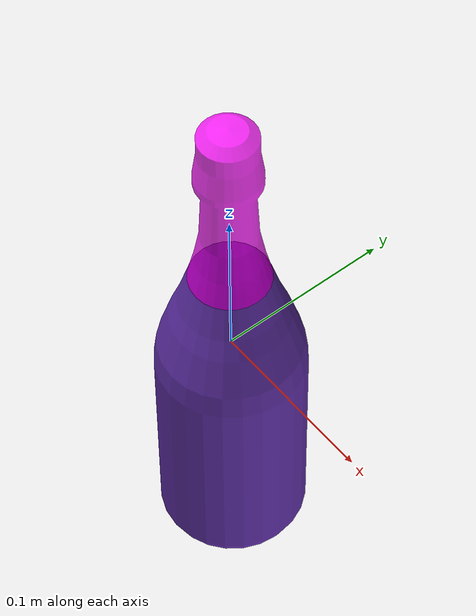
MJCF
<?xml version="1.0" encoding="utf-8"?>
<mujoco model="top_watertight_tiny">

  <asset>

    <mesh file="top_watertight_tiny.obj"/>

    <mesh file="top_watertight_tiny_collision_0.obj"/>

    <mesh file="top_watertight_tiny_collision_1.obj"/>

    <mesh file="top_watertight_tiny_collision_2.obj"/>

    <mesh file="top_watertight_tiny_collision_3.obj"/>

    <mesh file="top_watertight_tiny_collision_4.obj"/>

    <mesh file="top_watertight_tiny_collision_5.obj"/>

    <mesh file="top_watertight_tiny_collision_6.obj"/>

    <mesh file="top_watertight_tiny_collision_7.obj"/>

    <mesh file="top_watertight_tiny_collision_8.obj"/>

    <mesh file="top_watertight_tiny_collision_9.obj"/>

    <mesh file="top_watertight_tiny_collision_10.obj"/>

    <mesh file="top_watertight_tiny_collision_11.obj"/>

    <mesh file="top_watertight_tiny_collision_12.obj"/>

    <mesh file="top_watertight_tiny_collision_13.obj"/>

    <mesh file="top_watertight_tiny_collision_14.obj"/>

    <mesh file="top_watertight_tiny_collision_15.obj"/>

    <mesh file="top_watertight_tiny_collision_16.obj"/>

    <mesh file="top_watertight_tiny_collision_17.obj"/>

    <mesh file="top_watertight_tiny_collision_18.obj"/>

    <mesh file="top_watertight_tiny_collision_19.obj"/>

    <mesh file="top_watertight_tiny_collision_20.obj"/>

    <mesh file="top_watertight_tiny_collision_21.obj"/>

    <mesh file="top_watertight_tiny_collision_22.obj"/>

    <mesh file="top_watertight_tiny_collision_23.obj"/>

    <mesh file="top_watertight_tiny_collision_24.obj"/>

    <mesh file="top_watertight_tiny_collision_25.obj"/>

    <mesh file="top_watertight_tiny_collision_26.obj"/>

    <mesh file="top_watertight_tiny_collision_27.obj"/>

    <mesh file="top_watertight_tiny_collision_28.obj"/>

    <mesh file="top_watertight_tiny_collision_29.obj"/>

    <mesh file="top_watertight_tiny_collision_30.obj"/>

    <mesh file="top_watertight_tiny_collision_31.obj"/>

    <mesh file="top_watertight_tiny_collision_32.obj"/>

    <mesh file="top_watertight_tiny_collision_33.obj"/>

    <mesh file="top_watertight_tiny_collision_34.obj"/>

    <mesh file="bottom_watertight_tiny.obj"/>

    <mesh file="bottom_watertight_tiny_collision_0.obj"/>

    <mesh file="bottom_watertight_tiny_collision_1.obj"/>

    <mesh file="bottom_watertight_tiny_collision_2.obj"/>

    <mesh file="bottom_watertight_tiny_collision_3.obj"/>

    <mesh file="bottom_watertight_tiny_collision_4.obj"/>

    <mesh file="bottom_watertight_tiny_collision_5.obj"/>

    <mesh file="bottom_watertight_tiny_collision_6.obj"/>

    <mesh file="bottom_watertight_tiny_collision_7.obj"/>

    <mesh file="bottom_watertight_tiny_collision_8.obj"/>

    <mesh file="bottom_watertight_tiny_collision_9.obj"/>

    <mesh file="bottom_watertight_tiny_collision_10.obj"/>

    <mesh file="bottom_watertight_tiny_collision_11.obj"/>

    <mesh file="bottom_watertight_tiny_collision_12.obj"/>

    <mesh file="bottom_watertight_tiny_collision_13.obj"/>

    <mesh file="bottom_watertight_tiny_collision_14.obj"/>

    <mesh file="bottom_watertight_tiny_collision_15.obj"/>

    <mesh file="bottom_watertight_tiny_collision_16.obj"/>

    <mesh file="bottom_watertight_tiny_collision_17.obj"/>

    <mesh file="bottom_watertight_tiny_collision_18.obj"/>

    <mesh file="bottom_watertight_tiny_collision_19.obj"/>

    <mesh file="bottom_watertight_tiny_collision_20.obj"/>

    <mesh file="bottom_watertight_tiny_collision_21.obj"/>

    <mesh file="bottom_watertight_tiny_collision_22.obj"/>

    <mesh file="bottom_watertight_tiny_collision_23.obj"/>

    <mesh file="bottom_watertight_tiny_collision_24.obj"/>

    <mesh file="bottom_watertight_tiny_collision_25.obj"/>

    <mesh file="bottom_watertight_tiny_collision_26.obj"/>

    <mesh file="bottom_watertight_tiny_collision_27.obj"/>

    <mesh file="bottom_watertight_tiny_collision_28.obj"/>

    <mesh file="bottom_watertight_tiny_collision_29.obj"/>

    <mesh file="bottom_watertight_tiny_collision_30.obj"/>

    <mesh file="bottom_watertight_tiny_collision_31.obj"/>

    <mesh file="bottom_watertight_tiny_collision_32.obj"/>

    <mesh file="bottom_watertight_tiny_collision_33.obj"/>

    <mesh file="bottom_watertight_tiny_collision_34.obj"/>

    <mesh file="bottom_watertight_tiny_collision_35.obj"/>

    <mesh file="bottom_watertight_tiny_collision_36.obj"/>

    <mesh file="bottom_watertight_tiny_collision_37.obj"/>

    <mesh file="bottom_watertight_tiny_collision_38.obj"/>

    <mesh file="bottom_watertight_tiny_collision_39.obj"/>

    <mesh file="bottom_watertight_tiny_collision_40.obj"/>

    <mesh file="bottom_watertight_tiny_collision_41.obj"/>

    <mesh file="bottom_watertight_tiny_collision_42.obj"/>

    <mesh file="bottom_watertight_tiny_collision_43.obj"/>

    <mesh file="bottom_watertight_tiny_collision_44.obj"/>

    <mesh file="bottom_watertight_tiny_collision_45.obj"/>

  </asset>

  <worldbody>

    <body name="top_watertight_tiny">

      <freejoint/>

      <geom mesh="top_watertight_tiny" group="2" type="mesh" rgba="0.4 0.2 0.7 1" contype="0" conaffinity="0" solimp="0.90 0.95 0.001" solref="0.02 1.0" density="100" friction="0.95 0.4 0.3"/>

      <geom mesh="top_watertight_tiny_collision_0" rgba="0.9738559264525701 0.5337209492172882 0.19861902941835907 1" group="3" type="mesh" solimp="0.90 0.95 0.001" solref="0.02 1.0" density="100" friction="0.95 0.4 0.3"/>

      <geom mesh="top_watertight_tiny_collision_1" rgba="0.39413652552306055 0.7271618735801437 0.3476619241012544 1" group="3" type="mesh" solimp="0.90 0.95 0.001" solref="0.02 1.0" density="100" friction="0.95 0.4 0.3"/>

      <geom mesh="top_watertight_tiny_collision_2" rgba="0.07412613423704395 0.6511715876219647 0.686690603524716 1" group="3" type="mesh" solimp="0.90 0.95 0.001" solref="0.02 1.0" density="100" friction="0.95 0.4 0.3"/>

      <geom mesh="top_watertight_tiny_collision_3" rgba="0.09133713154245604 0.7821452830691618 0.6533938736487966 1" group="3" type="mesh" solimp="0.90 0.95 0.001" solref="0.02 1.0" density="100" friction="0.95 0.4 0.3"/>

      <geom mesh="top_watertight_tiny_collision_4" rgba="0.9530333933785317 0.23166128603588454 0.3520543809126233 1" group="3" type="mesh" solimp="0.90 0.95 0.001" solref="0.02 1.0" density="100" friction="0.95 0.4 0.3"/>

      <geom mesh="top_watertight_tiny_collision_5" rgba="0.7411129441383953 0.29504837082061486 0.852786074730955 1" group="3" type="mesh" solimp="0.90 0.95 0.001" solref="0.02 1.0" density="100" friction="0.95 0.4 0.3"/>

      <geom mesh="top_watertight_tiny_collision_6" rgba="0.9830123361096486 0.6379150172404865 0.3505885316255166 1" group="3" type="mesh" solimp="0.90 0.95 0.001" solref="0.02 1.0" density="100" friction="0.95 0.4 0.3"/>

      <geom mesh="top_watertight_tiny_collision_7" rgba="0.6242415163558259 0.5008725793006199 0.12455554878553143 1" group="3" type="mesh" solimp="0.90 0.95 0.001" solref="0.02 1.0" density="100" friction="0.95 0.4 0.3"/>

      <geom mesh="top_watertight_tiny_collision_8" rgba="0.287084232208501 0.8573439642230989 0.08510092083700826 1" group="3" type="mesh" solimp="0.90 0.95 0.001" solref="0.02 1.0" density="100" friction="0.95 0.4 0.3"/>

      <geom mesh="top_watertight_tiny_collision_9" rgba="0.8866160503093553 0.5170332608377072 0.6592623922124261 1" group="3" type="mesh" solimp="0.90 0.95 0.001" solref="0.02 1.0" density="100" friction="0.95 0.4 0.3"/>

      <geom mesh="top_watertight_tiny_collision_10" rgba="0.11415598515014069 0.1761473839022467 0.2984783363679566 1" group="3" type="mesh" solimp="0.90 0.95 0.001" solref="0.02 1.0" density="100" friction="0.95 0.4 0.3"/>

      <geom mesh="top_watertight_tiny_collision_11" rgba="0.4925214268449788 0.942749009490018 0.7131283208554677 1" group="3" type="mesh" solimp="0.90 0.95 0.001" solref="0.02 1.0" density="100" friction="0.95 0.4 0.3"/>

      <geom mesh="top_watertight_tiny_collision_12" rgba="0.6215571992394701 0.288457661769861 0.7245392370082887 1" group="3" type="mesh" solimp="0.90 0.95 0.001" solref="0.02 1.0" density="100" friction="0.95 0.4 0.3"/>

      <geom mesh="top_watertight_tiny_collision_13" rgba="0.4896756077365232 0.14476789058865935 0.15206031065150805 1" group="3" type="mesh" solimp="0.90 0.95 0.001" solref="0.02 1.0" density="100" friction="0.95 0.4 0.3"/>

      <geom mesh="top_watertight_tiny_collision_14" rgba="0.29437039010668964 0.23827960761558098 0.1799180256123002 1" group="3" type="mesh" solimp="0.90 0.95 0.001" solref="0.02 1.0" density="100" friction="0.95 0.4 0.3"/>

      <geom mesh="top_watertight_tiny_collision_15" rgba="0.9489261023803855 0.007698044262403947 0.18685135030394895 1" group="3" type="mesh" solimp="0.90 0.95 0.001" solref="0.02 1.0" density="100" friction="0.95 0.4 0.3"/>

      <geom mesh="top_watertight_tiny_collision_16" rgba="0.11067168528007187 0.49295493900146825 0.4043171822307431 1" group="3" type="mesh" solimp="0.90 0.95 0.001" solref="0.02 1.0" density="100" friction="0.95 0.4 0.3"/>

      <geom mesh="top_watertight_tiny_collision_17" rgba="0.28389489076703356 0.20043419366291504 0.10643453370870615 1" group="3" type="mesh" solimp="0.90 0.95 0.001" solref="0.02 1.0" density="100" friction="0.95 0.4 0.3"/>

      <geom mesh="top_watertight_tiny_collision_18" rgba="0.8428593090388339 0.966587334305474 0.7027854532816847 1" group="3" type="mesh" solimp="0.90 0.95 0.001" solref="0.02 1.0" density="100" friction="0.95 0.4 0.3"/>

      <geom mesh="top_watertight_tiny_collision_19" rgba="0.509991584954913 0.974778184802531 0.9173120337305716 1" group="3" type="mesh" solimp="0.90 0.95 0.001" solref="0.02 1.0" density="100" friction="0.95 0.4 0.3"/>

      <geom mesh="top_watertight_tiny_collision_20" rgba="0.9516381584837211 0.6916173539910881 0.16605530309972982 1" group="3" type="mesh" solimp="0.90 0.95 0.001" solref="0.02 1.0" density="100" friction="0.95 0.4 0.3"/>

      <geom mesh="top_watertight_tiny_collision_21" rgba="0.9773382030140296 0.5392423396827188 0.7945766254847566 1" group="3" type="mesh" solimp="0.90 0.95 0.001" solref="0.02 1.0" density="100" friction="0.95 0.4 0.3"/>

      <geom mesh="top_watertight_tiny_collision_22" rgba="0.7199999787723581 0.16934581097258983 0.869384506450687 1" group="3" type="mesh" solimp="0.90 0.95 0.001" solref="0.02 1.0" density="100" friction="0.95 0.4 0.3"/>

      <geom mesh="top_watertight_tiny_collision_23" rgba="0.5269935254383796 0.2629110453428025 0.90931322184288 1" group="3" type="mesh" solimp="0.90 0.95 0.001" solref="0.02 1.0" density="100" friction="0.95 0.4 0.3"/>

      <geom mesh="top_watertight_tiny_collision_24" rgba="0.5197499049102631 0.9702703242816139 0.24974131176267833 1" group="3" type="mesh" solimp="0.90 0.95 0.001" solref="0.02 1.0" density="100" friction="0.95 0.4 0.3"/>

      <geom mesh="top_watertight_tiny_collision_25" rgba="0.12915463850100517 0.3305229496009755 0.008566485712579563 1" group="3" type="mesh" solimp="0.90 0.95 0.001" solref="0.02 1.0" density="100" friction="0.95 0.4 0.3"/>

      <geom mesh="top_watertight_tiny_collision_26" rgba="0.18484860801873404 0.13327779096791248 0.2214603218118909 1" group="3" type="mesh" solimp="0.90 0.95 0.001" solref="0.02 1.0" density="100" friction="0.95 0.4 0.3"/>

      <geom mesh="top_watertight_tiny_collision_27" rgba="0.4751100295940224 0.07497054983724105 0.5325028518598828 1" group="3" type="mesh" solimp="0.90 0.95 0.001" solref="0.02 1.0" density="100" friction="0.95 0.4 0.3"/>

      <geom mesh="top_watertight_tiny_collision_28" rgba="0.6403231524758303 0.4649586356370077 0.05265068598298506 1" group="3" type="mesh" solimp="0.90 0.95 0.001" solref="0.02 1.0" density="100" friction="0.95 0.4 0.3"/>

      <geom mesh="top_watertight_tiny_collision_29" rgba="0.3572005129331567 0.6535381506605513 0.2136499025759483 1" group="3" type="mesh" solimp="0.90 0.95 0.001" solref="0.02 1.0" density="100" friction="0.95 0.4 0.3"/>

      <geom mesh="top_watertight_tiny_collision_30" rgba="0.8488584965814733 0.9731474160440399 0.4731022551812699 1" group="3" type="mesh" solimp="0.90 0.95 0.001" solref="0.02 1.0" density="100" friction="0.95 0.4 0.3"/>

      <geom mesh="top_watertight_tiny_collision_31" rgba="0.6741138243044994 0.18329433716930066 0.6681444988255048 1" group="3" type="mesh" solimp="0.90 0.95 0.001" solref="0.02 1.0" density="100" friction="0.95 0.4 0.3"/>

      <geom mesh="top_watertight_tiny_collision_32" rgba="0.9291629245122077 0.2489003633017176 0.7294762004136192 1" group="3" type="mesh" solimp="0.90 0.95 0.001" solref="0.02 1.0" density="100" friction="0.95 0.4 0.3"/>

      <geom mesh="top_watertight_tiny_collision_33" rgba="0.504408600488143 0.48494918983962154 0.11692320423307401 1" group="3" type="mesh" solimp="0.90 0.95 0.001" solref="0.02 1.0" density="100" friction="0.95 0.4 0.3"/>

      <geom mesh="top_watertight_tiny_collision_34" rgba="0.3136491652962591 0.6274255026395742 0.4985581952887612 1" group="3" type="mesh" solimp="0.90 0.95 0.001" solref="0.02 1.0" density="100" friction="0.95 0.4 0.3"/>

      <body name="bottom_watertight_tiny">

        <geom mesh="bottom_watertight_tiny" group="2" type="mesh" rgba="1 0 1 0.8" contype="0" conaffinity="0" solimp="0.90 0.95 0.001" solref="0.02 1.0" density="100" friction="0.95 0.4 0.3"/>

        <geom mesh="bottom_watertight_tiny_collision_0" rgba="0.9421016590431367 0.4295423006999385 0.4772473852593627 1" group="3" type="mesh" solimp="0.90 0.95 0.001" solref="0.02 1.0" density="100" friction="0.95 0.4 0.3"/>

        <geom mesh="bottom_watertight_tiny_collision_1" rgba="0.1564351845515236 0.5539180612918909 0.802008377272998 1" group="3" type="mesh" solimp="0.90 0.95 0.001" solref="0.02 1.0" density="100" friction="0.95 0.4 0.3"/>

        <geom mesh="bottom_watertight_tiny_collision_2" rgba="0.9004269855679644 0.6677418246746807 0.19382898476810484 1" group="3" type="mesh" solimp="0.90 0.95 0.001" solref="0.02 1.0" density="100" friction="0.95 0.4 0.3"/>

        <geom mesh="bottom_watertight_tiny_collision_3" rgba="0.5575978403072669 0.5755522339741203 0.7672808572614295 1" group="3" type="mesh" solimp="0.90 0.95 0.001" solref="0.02 1.0" density="100" friction="0.95 0.4 0.3"/>

        <geom mesh="bottom_watertight_tiny_collision_4" rgba="0.050664887594296215 0.37647322269453243 0.08547653072307826 1" group="3" type="mesh" solimp="0.90 0.95 0.001" solref="0.02 1.0" density="100" friction="0.95 0.4 0.3"/>

        <geom mesh="bottom_watertight_tiny_collision_5" rgba="0.4213739520240328 0.32687512567219856 0.009920602645650534 1" group="3" type="mesh" solimp="0.90 0.95 0.001" solref="0.02 1.0" density="100" friction="0.95 0.4 0.3"/>

        <geom mesh="bottom_watertight_tiny_collision_6" rgba="0.2726108470352995 0.34344507423970083 0.08211541466282535 1" group="3" type="mesh" solimp="0.90 0.95 0.001" solref="0.02 1.0" density="100" friction="0.95 0.4 0.3"/>

        <geom mesh="bottom_watertight_tiny_collision_7" rgba="0.209656390244906 0.7569628128122862 0.10707746620259084 1" group="3" type="mesh" solimp="0.90 0.95 0.001" solref="0.02 1.0" density="100" friction="0.95 0.4 0.3"/>

        <geom mesh="bottom_watertight_tiny_collision_8" rgba="0.25317475710928106 0.7707558476400088 0.7540822614944259 1" group="3" type="mesh" solimp="0.90 0.95 0.001" solref="0.02 1.0" density="100" friction="0.95 0.4 0.3"/>

        <geom mesh="bottom_watertight_tiny_collision_9" rgba="0.331245156585243 0.6996805871700583 0.009986498375281982 1" group="3" type="mesh" solimp="0.90 0.95 0.001" solref="0.02 1.0" density="100" friction="0.95 0.4 0.3"/>

        <geom mesh="bottom_watertight_tiny_collision_10" rgba="0.3644299739436261 0.6023554082664958 0.5375104901850447 1" group="3" type="mesh" solimp="0.90 0.95 0.001" solref="0.02 1.0" density="100" friction="0.95 0.4 0.3"/>

        <geom mesh="bottom_watertight_tiny_collision_11" rgba="0.11351254824832557 0.9258838328475842 0.15512815887520648 1" group="3" type="mesh" solimp="0.90 0.95 0.001" solref="0.02 1.0" density="100" friction="0.95 0.4 0.3"/>

        <geom mesh="bottom_watertight_tiny_collision_12" rgba="0.06505928683881912 0.4292743657263626 0.7575145250857411 1" group="3" type="mesh" solimp="0.90 0.95 0.001" solref="0.02 1.0" density="100" friction="0.95 0.4 0.3"/>

        <geom mesh="bottom_watertight_tiny_collision_13" rgba="0.4694387354584154 0.4024197791657137 0.6528968626089501 1" group="3" type="mesh" solimp="0.90 0.95 0.001" solref="0.02 1.0" density="100" friction="0.95 0.4 0.3"/>

        <geom mesh="bottom_watertight_tiny_collision_14" rgba="0.38555748008515844 0.05350648839061001 0.04314232303130683 1" group="3" type="mesh" solimp="0.90 0.95 0.001" solref="0.02 1.0" density="100" friction="0.95 0.4 0.3"/>

        <geom mesh="bottom_watertight_tiny_collision_15" rgba="0.5018653866945066 0.28536465750207907 0.285600573605054 1" group="3" type="mesh" solimp="0.90 0.95 0.001" solref="0.02 1.0" density="100" friction="0.95 0.4 0.3"/>

        <geom mesh="bottom_watertight_tiny_collision_16" rgba="0.2885841742282278 0.11484371185836084 0.6374622385377419 1" group="3" type="mesh" solimp="0.90 0.95 0.001" solref="0.02 1.0" density="100" friction="0.95 0.4 0.3"/>

        <geom mesh="bottom_watertight_tiny_collision_17" rgba="0.2198935390615402 0.46916866972248616 0.5731089723840236 1" group="3" type="mesh" solimp="0.90 0.95 0.001" solref="0.02 1.0" density="100" friction="0.95 0.4 0.3"/>

        <geom mesh="bottom_watertight_tiny_collision_18" rgba="0.2653321208684818 0.24646622954153208 0.7672859701737712 1" group="3" type="mesh" solimp="0.90 0.95 0.001" solref="0.02 1.0" density="100" friction="0.95 0.4 0.3"/>

        <geom mesh="bottom_watertight_tiny_collision_19" rgba="0.897694818378677 0.7118719243561996 0.3061458683326824 1" group="3" type="mesh" solimp="0.90 0.95 0.001" solref="0.02 1.0" density="100" friction="0.95 0.4 0.3"/>

        <geom mesh="bottom_watertight_tiny_collision_20" rgba="0.8702845893420182 0.24583197183578354 0.5850663755475531 1" group="3" type="mesh" solimp="0.90 0.95 0.001" solref="0.02 1.0" density="100" friction="0.95 0.4 0.3"/>

        <geom mesh="bottom_watertight_tiny_collision_21" rgba="0.6159620466272289 0.1589913927677582 0.029974515071139796 1" group="3" type="mesh" solimp="0.90 0.95 0.001" solref="0.02 1.0" density="100" friction="0.95 0.4 0.3"/>

        <geom mesh="bottom_watertight_tiny_collision_22" rgba="0.6418068765041776 0.7568407788148714 0.3302895908270408 1" group="3" type="mesh" solimp="0.90 0.95 0.001" solref="0.02 1.0" density="100" friction="0.95 0.4 0.3"/>

        <geom mesh="bottom_watertight_tiny_collision_23" rgba="0.49876588439541913 0.726456532277409 0.38369284959784156 1" group="3" type="mesh" solimp="0.90 0.95 0.001" solref="0.02 1.0" density="100" friction="0.95 0.4 0.3"/>

        <geom mesh="bottom_watertight_tiny_collision_24" rgba="0.7062365071740999 0.984629234598314 0.3316765135285228 1" group="3" type="mesh" solimp="0.90 0.95 0.001" solref="0.02 1.0" density="100" friction="0.95 0.4 0.3"/>

        <geom mesh="bottom_watertight_tiny_collision_25" rgba="0.7694210651642691 0.6930414808966998 0.09524614367842332 1" group="3" type="mesh" solimp="0.90 0.95 0.001" solref="0.02 1.0" density="100" friction="0.95 0.4 0.3"/>

        <geom mesh="bottom_watertight_tiny_collision_26" rgba="0.2911826037413868 0.12479311797545867 0.34025567054163486 1" group="3" type="mesh" solimp="0.90 0.95 0.001" solref="0.02 1.0" density="100" friction="0.95 0.4 0.3"/>

        <geom mesh="bottom_watertight_tiny_collision_27" rgba="0.07095360940358841 0.4397360277175626 0.7667453877336858 1" group="3" type="mesh" solimp="0.90 0.95 0.001" solref="0.02 1.0" density="100" friction="0.95 0.4 0.3"/>

        <geom mesh="bottom_watertight_tiny_collision_28" rgba="0.23394590654754666 0.3329196305397468 0.1679757856385471 1" group="3" type="mesh" solimp="0.90 0.95 0.001" solref="0.02 1.0" density="100" friction="0.95 0.4 0.3"/>

        <geom mesh="bottom_watertight_tiny_collision_29" rgba="0.693174066530816 0.4990784067714581 0.14263645644712553 1" group="3" type="mesh" solimp="0.90 0.95 0.001" solref="0.02 1.0" density="100" friction="0.95 0.4 0.3"/>

        <geom mesh="bottom_watertight_tiny_collision_30" rgba="0.6622654653008889 0.6911383213170047 0.15885570962589501 1" group="3" type="mesh" solimp="0.90 0.95 0.001" solref="0.02 1.0" density="100" friction="0.95 0.4 0.3"/>

        <geom mesh="bottom_watertight_tiny_collision_31" rgba="0.6495744711322515 0.7399123191426145 0.36334379622761315 1" group="3" type="mesh" solimp="0.90 0.95 0.001" solref="0.02 1.0" density="100" friction="0.95 0.4 0.3"/>

        <geom mesh="bottom_watertight_tiny_collision_32" rgba="0.4857998602029353 0.4669579639154785 0.7336727538320122 1" group="3" type="mesh" solimp="0.90 0.95 0.001" solref="0.02 1.0" density="100" friction="0.95 0.4 0.3"/>

        <geom mesh="bottom_watertight_tiny_collision_33" rgba="0.1626324719127884 0.42275493461657665 0.6003403505982362 1" group="3" type="mesh" solimp="0.90 0.95 0.001" solref="0.02 1.0" density="100" friction="0.95 0.4 0.3"/>

        <geom mesh="bottom_watertight_tiny_collision_34" rgba="0.8028879947536873 0.8191197795249725 0.4483497909421402 1" group="3" type="mesh" solimp="0.90 0.95 0.001" solref="0.02 1.0" density="100" friction="0.95 0.4 0.3"/>

        <geom mesh="bottom_watertight_tiny_collision_35" rgba="0.016180955758664295 0.38387173463286384 0.10277014666387763 1" group="3" type="mesh" solimp="0.90 0.95 0.001" solref="0.02 1.0" density="100" friction="0.95 0.4 0.3"/>

        <geom mesh="bottom_watertight_tiny_collision_36" rgba="0.6430289699674492 0.7361954576017222 0.7611652295697081 1" group="3" type="mesh" solimp="0.90 0.95 0.001" solref="0.02 1.0" density="100" friction="0.95 0.4 0.3"/>

        <geom mesh="bottom_watertight_tiny_collision_37" rgba="0.6180132134260138 0.8863335084322751 0.5975213678052897 1" group="3" type="mesh" solimp="0.90 0.95 0.001" solref="0.02 1.0" density="100" friction="0.95 0.4 0.3"/>

        <geom mesh="bottom_watertight_tiny_collision_38" rgba="0.08594359310789768 0.1699395977599094 0.7245069508208686 1" group="3" type="mesh" solimp="0.90 0.95 0.001" solref="0.02 1.0" density="100" friction="0.95 0.4 0.3"/>

        <geom mesh="bottom_watertight_tiny_collision_39" rgba="0.07805980561325665 0.8806282238190799 0.4975869947678233 1" group="3" type="mesh" solimp="0.90 0.95 0.001" solref="0.02 1.0" density="100" friction="0.95 0.4 0.3"/>

        <geom mesh="bottom_watertight_tiny_collision_40" rgba="0.90447272934752 0.10001735545237767 0.20665529743982713 1" group="3" type="mesh" solimp="0.90 0.95 0.001" solref="0.02 1.0" density="100" friction="0.95 0.4 0.3"/>

        <geom mesh="bottom_watertight_tiny_collision_41" rgba="0.2529047699130952 0.99839552922128 0.30345737694817 1" group="3" type="mesh" solimp="0.90 0.95 0.001" solref="0.02 1.0" density="100" friction="0.95 0.4 0.3"/>

        <geom mesh="bottom_watertight_tiny_collision_42" rgba="0.5949964506315777 0.5701369826577033 0.8773738160059167 1" group="3" type="mesh" solimp="0.90 0.95 0.001" solref="0.02 1.0" density="100" friction="0.95 0.4 0.3"/>

        <geom mesh="bottom_watertight_tiny_collision_43" rgba="0.4581135979482456 0.9460041207443642 0.4618178563654377 1" group="3" type="mesh" solimp="0.90 0.95 0.001" solref="0.02 1.0" density="100" friction="0.95 0.4 0.3"/>

        <geom mesh="bottom_watertight_tiny_collision_44" rgba="0.33059064331412735 0.5038693132114359 0.05847307958439618 1" group="3" type="mesh" solimp="0.90 0.95 0.001" solref="0.02 1.0" density="100" friction="0.95 0.4 0.3"/>

        <geom mesh="bottom_watertight_tiny_collision_45" rgba="0.6552340343170117 0.7613552537848937 0.7528309297037065 1" group="3" type="mesh" solimp="0.90 0.95 0.001" solref="0.02 1.0" density="100" friction="0.95 0.4 0.3"/>

        <site name="bottom_watertight_tiny_touch_site" pos="0 0 0" size="0.2" rgba="1 0 0 0." type="sphere"/>
      </body>

      <site name="top_watertight_tiny_touch_site" pos="0 0 0" size="0.2" rgba="1 0 0 0." type="sphere"/>
    </body>

  </worldbody>

  <sensor>
    <touch name="top_watertight_tiny_touch" site="top_watertight_tiny_touch_site"/>
    <touch name="bottom_watertight_tiny_touch" site="bottom_watertight_tiny_touch_site"/>
  </sensor>
</mujoco>
